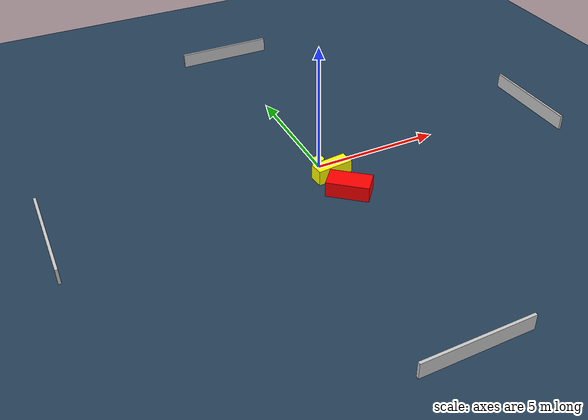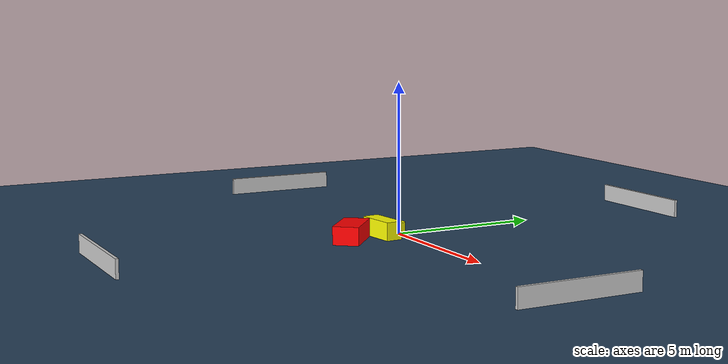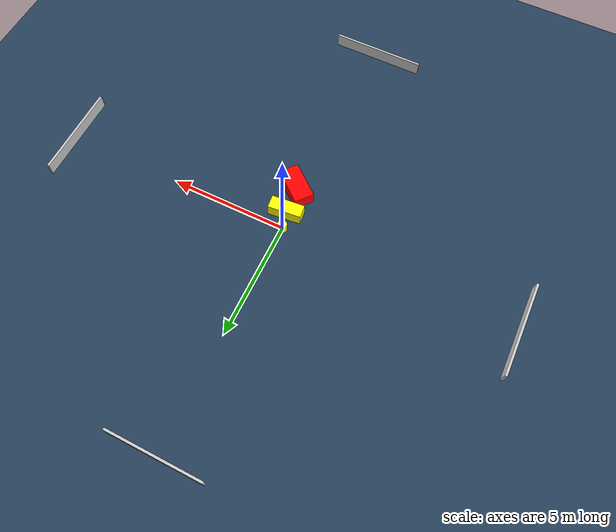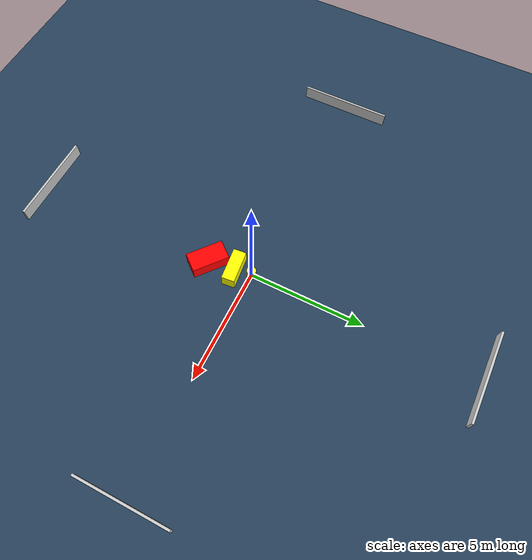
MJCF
<?xml version="1.0" ?>
<mujoco model="generated_environment">
  <option timestep="0.01" integrator="RK4" cone="elliptic"/>
  <default>
    <geom density="1"/>
  </default>
  <asset>
    <texture builtin="gradient" height="3072" name="skybox" rgb1="0.3 0.5 0.7" rgb2="0 0 0" type="skybox" width="512"/>
    <texture builtin="checker" height="300" name="groundplane" rgb1="0.2 0.3 0.4" rgb2="0.1 0.2 0.3" type="2d" width="300"/>
    <material name="groundplane" reflectance="0.2" texrepeat="5 5" texture="groundplane"/>
  </asset>
  <worldbody>
    <light dir="0 0 -1" directional="true" pos="0 0 1.5"/>
    <geom condim="3" friction="0.5 0.005 0.001" material="groundplane" name="floor" pos="0 0 0" size="0 0 0.05" type="plane"/>
    <body name="walls">
      <geom name="wall_1" condim="4" pos="-10.0 0.0 0.3" rgba="0.800000011920929 0.800000011920929 0.800000011920929 1.0" size="0.05 2.0 0.3" type="box"/>
      <geom name="wall_2" condim="4" pos="10.0 0.0 0.3" rgba="0.800000011920929 0.800000011920929 0.800000011920929 1.0" size="0.05 2.0 0.3" type="box"/>
      <geom name="wall_3" condim="4" pos="0.0 -10.0 0.3" rgba="0.800000011920929 0.800000011920929 0.800000011920929 1.0" size="2.0 0.05 0.3" type="box"/>
      <geom name="wall_4" condim="4" pos="0.0 10.0 0.3" rgba="0.800000011920929 0.800000011920929 0.800000011920929 1.0" size="2.0 0.05 0.3" type="box"/>
    </body>
    <body name="robot">
      <joint name="joint_x" type="slide" pos="0 0 0" axis="1 0 0"/>
      <joint name="joint_y" type="slide" pos="0 0 0" axis="0 1 0"/>
      <geom name="robot" type="cylinder" pos="0.0 0.0 0.2" size="0.2 0.2 0.0" mass="5.0" friction="1.0 0.005 0.0001" condim="4" rgba="1.0 1.0 0.0 1.0"/>
    </body>
    <body name="obstacle_1_movable">
      <geom name="obstacle_1_movable" condim="4" pos="0.17951384665266895 -0.7138220488715737 0.3" euler="0 0 186.0692207540482" friction="0.0 0.005 0.001" rgba="1.0 1.0 0.0 1.0" size="0.7025062114480718 0.2800071377713431 0.3" type="box" mass="0.1"/>
      <joint type="free"/>
    </body>
    <body name="obstacle_2_static">
      <geom name="obstacle_2_static" condim="4" pos="0.2883790064546659 -1.8904152572044506 0.3" euler="0 0 140.41285911416165" friction="0.0 0.005 0.001" rgba="1.0 0.0 0.0 1.0" size="0.7981705979703904 0.42561965058601997 0.3" type="box"/>
    </body>
  </worldbody>
  <actuator>
    <motor name="actuator_x" joint="joint_x" gear="1" ctrlrange="-1 1"/>
    <motor name="actuator_y" joint="joint_y" gear="1" ctrlrange="-1 1"/>
  </actuator>
</mujoco>
